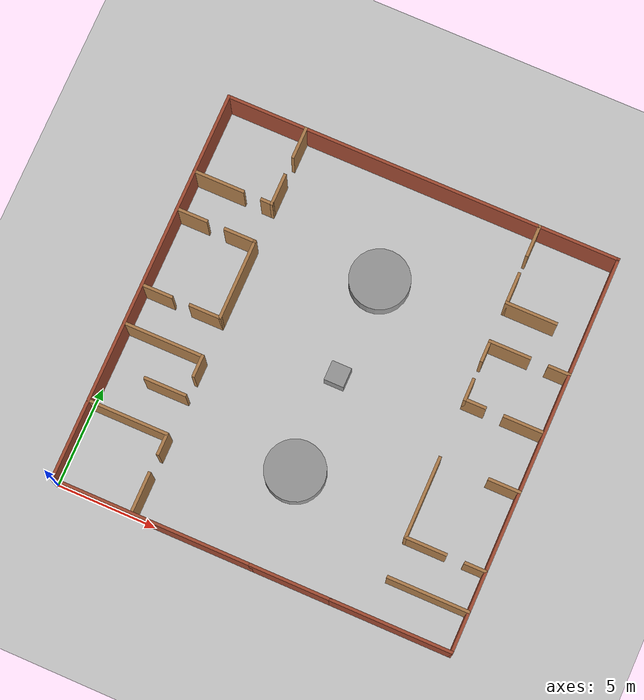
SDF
<sdf version="1.7">
 <world name="default">
  <light name="sun" type="directional">
   <pose>0 0 10 0 -0 0</pose>
   <diffuse>0.8 0.8 0.8 1</diffuse>
   <specular>0.2 0.2 0.2 1</specular>
   <attenuation>
    <range>1000</range>
    <constant>0.9</constant>
    <linear>0.01</linear>
    <quadratic>0.001</quadratic>
   </attenuation>
   <direction>-0.5 0.1 -0.9</direction>
   <spot><inner_angle>0</inner_angle><outer_angle>0</outer_angle><falloff>0</falloff></spot>
  </light>
  <model name="ground_plane">
   <static>1</static>
   <link name="link">
    <collision name="collision">
     <geometry><plane><normal>0 0 1</normal><size>100 100</size></plane></geometry>
     <surface>
      <contact><collide_bitmask>65535</collide_bitmask></contact>
      <friction><ode><mu>100</mu><mu2>50</mu2></ode></friction>
     </surface>
    </collision>
    <visual name="visual">
     <cast_shadows>0</cast_shadows>
     <geometry><plane><normal>0 0 1</normal><size>100 100</size></plane></geometry>
     <material>
      <script><uri>file://media/materials/scripts/gazebo.material</uri><name>Gazebo/Grey</name></script>
     </material>
    </visual>
   </link>
  </model>
  <gravity>0 0 -9.8</gravity>
  <magnetic_field>6e-06 2.3e-05 -4.2e-05</magnetic_field>
  <atmosphere type="adiabatic"/>
  <physics type="ode">
   <max_step_size>0.001</max_step_size>
   <real_time_factor>1</real_time_factor>
   <real_time_update_rate>1000</real_time_update_rate>
  </physics>
  <scene><ambient>0.4 0.4 0.4 1</ambient><background>0.7 0.7 0.7 1</background><shadows>1</shadows></scene>
  <spherical_coordinates>
   <surface_model>EARTH_WGS84</surface_model>
   <latitude_deg>0</latitude_deg>
   <longitude_deg>0</longitude_deg>
   <elevation>0</elevation>
   <heading_deg>0</heading_deg>
  </spherical_coordinates>
  <model name="Delivery_world">
   <pose>10 10 0 0 -0 0</pose>
   <link name="Wall_0">
    <collision name="Wall_0_Collision">
     <geometry><box><size>20.15 0.15 2.5</size></box></geometry>
     <pose>0 0 1.25 0 -0 0</pose>
    </collision>
    <visual name="Wall_0_Visual">
     <pose>0 0 1.25 0 -0 0</pose>
     <geometry><box><size>20.15 0.15 2.5</size></box></geometry>
     <material>
      <script><uri>file://media/materials/scripts/gazebo.material</uri><name>Gazebo/Bricks</name></script>
      <ambient>1 1 1 1</ambient>
     </material>
     <meta><layer>0</layer></meta>
    </visual>
    <pose>-10 0 0 0 -0 1.5708</pose>
   </link>
   <link name="Wall_10">
    <collision name="Wall_10_Collision">
     <geometry><box><size>4.15 0.15 2.5</size></box></geometry>
     <pose>0 0 1.25 0 -0 0</pose>
    </collision>
    <visual name="Wall_10_Visual">
     <pose>0 0 1.25 0 -0 0</pose>
     <geometry><box><size>4.15 0.15 2.5</size></box></geometry>
     <material>
      <script><uri>file://media/materials/scripts/gazebo.material</uri><name>Gazebo/Wood</name></script>
      <ambient>1 1 1 1</ambient>
     </material>
     <meta><layer>0</layer></meta>
    </visual>
    <pose>-8 -6 0 0 -0 0</pose>
   </link>
   <link name="Wall_12">
    <collision name="Wall_12_Collision">
     <geometry><box><size>1.15 0.15 2.5</size></box></geometry>
     <pose>0 0 1.25 0 -0 0</pose>
    </collision>
    <visual name="Wall_12_Visual">
     <pose>0 0 1.25 0 -0 0</pose>
     <geometry><box><size>1.15 0.15 2.5</size></box></geometry>
     <material>
      <script><uri>file://media/materials/scripts/gazebo.material</uri><name>Gazebo/Wood</name></script>
      <ambient>1 1 1 1</ambient>
     </material>
     <meta><layer>0</layer></meta>
    </visual>
    <pose>-6 -6.5 0 0 -0 -1.5708</pose>
   </link>
   <link name="Wall_14">
    <collision name="Wall_14_Collision">
     <geometry><box><size>2.15 0.15 2.5</size></box></geometry>
     <pose>0 0 1.25 0 -0 0</pose>
    </collision>
    <visual name="Wall_14_Visual">
     <pose>0 0 1.25 0 -0 0</pose>
     <geometry><box><size>2.15 0.15 2.5</size></box></geometry>
     <material>
      <script><uri>file://media/materials/scripts/gazebo.material</uri><name>Gazebo/Wood</name></script>
      <ambient>1 1 1 1</ambient>
     </material>
     <meta><layer>0</layer></meta>
    </visual>
    <pose>-6 -9 0 0 -0 -1.5708</pose>
   </link>
   <link name="Wall_16">
    <collision name="Wall_16_Collision">
     <geometry><box><size>2.15 0.15 2.5</size></box></geometry>
     <pose>0 0 1.25 0 -0 0</pose>
    </collision>
    <visual name="Wall_16_Visual">
     <pose>0 0 1.25 0 -0 0</pose>
     <geometry><box><size>2.15 0.15 2.5</size></box></geometry>
     <material>
      <script><uri>file://media/materials/scripts/gazebo.material</uri><name>Gazebo/Wood</name></script>
      <ambient>1 1 1 1</ambient>
     </material>
     <meta><layer>0</layer></meta>
    </visual>
    <pose>-7 -4 0 0 -0 0</pose>
   </link>
   <link name="Wall_2">
    <collision name="Wall_2_Collision">
     <geometry><box><size>20.15 0.15 2.5</size></box></geometry>
     <pose>0 0 1.25 0 -0 0</pose>
    </collision>
    <visual name="Wall_2_Visual">
     <pose>0 0 1.25 0 -0 0</pose>
     <geometry><box><size>20.15 0.15 2.5</size></box></geometry>
     <material>
      <script><uri>file://media/materials/scripts/gazebo.material</uri><name>Gazebo/Bricks</name></script>
      <ambient>1 1 1 1</ambient>
     </material>
     <meta><layer>0</layer></meta>
    </visual>
    <pose>0 10 0 0 -0 0</pose>
   </link>
   <link name="Wall_20">
    <collision name="Wall_20_Collision">
     <geometry><box><size>4.15 0.15 2.5</size></box></geometry>
     <pose>0 0 1.25 0 -0 0</pose>
    </collision>
    <visual name="Wall_20_Visual">
     <pose>0 0 1.25 0 -0 0</pose>
     <geometry><box><size>4.15 0.15 2.5</size></box></geometry>
     <material>
      <script><uri>file://media/materials/scripts/gazebo.material</uri><name>Gazebo/Wood</name></script>
      <ambient>1 1 1 1</ambient>
     </material>
     <meta><layer>0</layer></meta>
    </visual>
    <pose>-8 -2 0 0 -0 0</pose>
   </link>
   <link name="Wall_22">
    <collision name="Wall_22_Collision">
     <geometry><box><size>1.15 0.15 2.5</size></box></geometry>
     <pose>0 0 1.25 0 -0 0</pose>
    </collision>
    <visual name="Wall_22_Visual">
     <pose>0 0 1.25 0 -0 0</pose>
     <geometry><box><size>1.15 0.15 2.5</size></box></geometry>
     <material>
      <script><uri>file://media/materials/scripts/gazebo.material</uri><name>Gazebo/Wood</name></script>
      <ambient>1 1 1 1</ambient>
     </material>
     <meta><layer>0</layer></meta>
    </visual>
    <pose>-6 -2.5 0 0 -0 -1.5708</pose>
   </link>
   <link name="Wall_24">
    <collision name="Wall_24_Collision">
     <geometry><box><size>1.65 0.15 2.5</size></box></geometry>
     <pose>0 0 1.25 0 -0 0</pose>
    </collision>
    <visual name="Wall_24_Visual">
     <pose>0 0 1.25 0 -0 0</pose>
     <geometry><box><size>1.65 0.15 2.5</size></box></geometry>
     <material>
      <script><uri>file://media/materials/scripts/gazebo.material</uri><name>Gazebo/Wood</name></script>
      <ambient>1 1 1 1</ambient>
     </material>
     <meta><layer>0</layer></meta>
    </visual>
    <pose>-6.75 0 0 0 -0 0</pose>
   </link>
   <link name="Wall_26">
    <collision name="Wall_26_Collision">
     <geometry><box><size>1.65 0.15 2.5</size></box></geometry>
     <pose>0 0 1.25 0 -0 0</pose>
    </collision>
    <visual name="Wall_26_Visual">
     <pose>0 0 1.25 0 -0 0</pose>
     <geometry><box><size>1.65 0.15 2.5</size></box></geometry>
     <material>
      <script><uri>file://media/materials/scripts/gazebo.material</uri><name>Gazebo/Wood</name></script>
      <ambient>1 1 1 1</ambient>
     </material>
     <meta><layer>0</layer></meta>
    </visual>
    <pose>-9.25 0 0 0 -0 0</pose>
   </link>
   <link name="Wall_28">
    <collision name="Wall_28_Collision">
     <geometry><box><size>4.15 0.15 2.5</size></box></geometry>
     <pose>0 0 1.25 0 -0 0</pose>
    </collision>
    <visual name="Wall_28_Visual">
     <pose>0 0 1.25 0 -0 0</pose>
     <geometry><box><size>4.15 0.15 2.5</size></box></geometry>
     <material>
      <script><uri>file://media/materials/scripts/gazebo.material</uri><name>Gazebo/Wood</name></script>
      <ambient>1 1 1 1</ambient>
     </material>
     <meta><layer>0</layer></meta>
    </visual>
    <pose>-6 2 0 0 -0 -1.5708</pose>
   </link>
   <link name="Wall_30">
    <collision name="Wall_30_Collision">
     <geometry><box><size>1.65 0.15 2.5</size></box></geometry>
     <pose>0 0 1.25 0 -0 0</pose>
    </collision>
    <visual name="Wall_30_Visual">
     <pose>0 0 1.25 0 -0 0</pose>
     <geometry><box><size>1.65 0.15 2.5</size></box></geometry>
     <material>
      <script><uri>file://media/materials/scripts/gazebo.material</uri><name>Gazebo/Wood</name></script>
      <ambient>1 1 1 1</ambient>
     </material>
     <meta><layer>0</layer></meta>
    </visual>
    <pose>-9.25 4 0 0 -0 0</pose>
   </link>
   <link name="Wall_32">
    <collision name="Wall_32_Collision">
     <geometry><box><size>2.65 0.15 2.5</size></box></geometry>
     <pose>0 0 1.25 0 -0 0</pose>
    </collision>
    <visual name="Wall_32_Visual">
     <pose>0 0 1.25 0 -0 0</pose>
     <geometry><box><size>2.65 0.15 2.5</size></box></geometry>
     <material>
      <script><uri>file://media/materials/scripts/gazebo.material</uri><name>Gazebo/Wood</name></script>
      <ambient>1 1 1 1</ambient>
     </material>
     <meta><layer>0</layer></meta>
    </visual>
    <pose>-8.75 6 0 0 -0 0</pose>
   </link>
   <link name="Wall_34">
    <collision name="Wall_34_Collision">
     <geometry><box><size>1.65 0.15 2.5</size></box></geometry>
     <pose>0 0 1.25 0 -0 0</pose>
    </collision>
    <visual name="Wall_34_Visual">
     <pose>0 0 1.25 0 -0 0</pose>
     <geometry><box><size>1.65 0.15 2.5</size></box></geometry>
     <material>
      <script><uri>file://media/materials/scripts/gazebo.material</uri><name>Gazebo/Wood</name></script>
      <ambient>1 1 1 1</ambient>
     </material>
     <meta><layer>0</layer></meta>
    </visual>
    <pose>-6 6.75 0 0 -0 -1.5708</pose>
   </link>
   <link name="Wall_36">
    <collision name="Wall_36_Collision">
     <geometry><box><size>0.65 0.15 2.5</size></box></geometry>
     <pose>0 0 1.25 0 -0 0</pose>
    </collision>
    <visual name="Wall_36_Visual">
     <pose>0 0 1.25 0 -0 0</pose>
     <geometry><box><size>0.65 0.15 2.5</size></box></geometry>
     <material>
      <script><uri>file://media/materials/scripts/gazebo.material</uri><name>Gazebo/Wood</name></script>
      <ambient>1 1 1 1</ambient>
     </material>
     <meta><layer>0</layer></meta>
    </visual>
    <pose>-6.25 6 0 0 -0 0</pose>
   </link>
   <link name="Wall_38">
    <collision name="Wall_38_Collision">
     <geometry><box><size>1.65 0.15 2.5</size></box></geometry>
     <pose>0 0 1.25 0 -0 0</pose>
    </collision>
    <visual name="Wall_38_Visual">
     <pose>0 0 1.25 0 -0 0</pose>
     <geometry><box><size>1.65 0.15 2.5</size></box></geometry>
     <material>
      <script><uri>file://media/materials/scripts/gazebo.material</uri><name>Gazebo/Wood</name></script>
      <ambient>1 1 1 1</ambient>
     </material>
     <meta><layer>0</layer></meta>
    </visual>
    <pose>-6.75 4 0 0 -0 0</pose>
   </link>
   <link name="Wall_4">
    <collision name="Wall_4_Collision">
     <geometry><box><size>20.15 0.15 2.5</size></box></geometry>
     <pose>0 0 1.25 0 -0 0</pose>
    </collision>
    <visual name="Wall_4_Visual">
     <pose>0 0 1.25 0 -0 0</pose>
     <geometry><box><size>20.15 0.15 2.5</size></box></geometry>
     <material>
      <script><uri>file://media/materials/scripts/gazebo.material</uri><name>Gazebo/Bricks</name></script>
      <ambient>1 1 1 1</ambient>
     </material>
     <meta><layer>0</layer></meta>
    </visual>
    <pose>10 0 0 0 -0 -1.5708</pose>
   </link>
   <link name="Wall_41">
    <collision name="Wall_41_Collision">
     <geometry><box><size>1.65 0.15 2.5</size></box></geometry>
     <pose>0 0 1.25 0 -0 0</pose>
    </collision>
    <visual name="Wall_41_Visual">
     <pose>0 0 1.25 0 -0 0</pose>
     <geometry><box><size>1.65 0.15 2.5</size></box></geometry>
     <material>
      <script><uri>file://media/materials/scripts/gazebo.material</uri><name>Gazebo/Wood</name></script>
      <ambient>1 1 1 1</ambient>
     </material>
     <meta><layer>0</layer></meta>
    </visual>
    <pose>-6 6.75 0 0 -0 -1.5708</pose>
   </link>
   <link name="Wall_43">
    <collision name="Wall_43_Collision">
     <geometry><box><size>1.65 0.15 2.5</size></box></geometry>
     <pose>0 0 1.25 0 -0 0</pose>
    </collision>
    <visual name="Wall_43_Visual">
     <pose>0 0 1.25 0 -0 0</pose>
     <geometry><box><size>1.65 0.15 2.5</size></box></geometry>
     <material>
      <script><uri>file://media/materials/scripts/gazebo.material</uri><name>Gazebo/Wood</name></script>
      <ambient>1 1 1 1</ambient>
     </material>
     <meta><layer>0</layer></meta>
    </visual>
    <pose>6 6.75 0 0 -0 -1.5708</pose>
   </link>
   <link name="Wall_45">
    <collision name="Wall_45_Collision">
     <geometry><box><size>1.65 0.15 2.5</size></box></geometry>
     <pose>0 0 1.25 0 -0 0</pose>
    </collision>
    <visual name="Wall_45_Visual">
     <pose>0 0 1.25 0 -0 0</pose>
     <geometry><box><size>1.65 0.15 2.5</size></box></geometry>
     <material>
      <script><uri>file://media/materials/scripts/gazebo.material</uri><name>Gazebo/Wood</name></script>
      <ambient>1 1 1 1</ambient>
     </material>
     <meta><layer>0</layer></meta>
    </visual>
    <pose>-6 9.25 0 0 -0 -1.5708</pose>
   </link>
   <link name="Wall_47">
    <collision name="Wall_47_Collision">
     <geometry><box><size>2.15 0.15 2.5</size></box></geometry>
     <pose>0 0 1.25 0 -0 0</pose>
    </collision>
    <visual name="Wall_47_Visual">
     <pose>0 0 1.25 0 -0 0</pose>
     <geometry><box><size>2.15 0.15 2.5</size></box></geometry>
     <material>
      <script><uri>file://media/materials/scripts/gazebo.material</uri><name>Gazebo/Wood</name></script>
      <ambient>1 1 1 1</ambient>
     </material>
     <meta><layer>0</layer></meta>
    </visual>
    <pose>7 4 0 0 -0 0</pose>
   </link>
   <link name="Wall_49">
    <collision name="Wall_49_Collision">
     <geometry><box><size>1.65 0.15 2.5</size></box></geometry>
     <pose>0 0 1.25 0 -0 0</pose>
    </collision>
    <visual name="Wall_49_Visual">
     <pose>0 0 1.25 0 -0 0</pose>
     <geometry><box><size>1.65 0.15 2.5</size></box></geometry>
     <material>
      <script><uri>file://media/materials/scripts/gazebo.material</uri><name>Gazebo/Wood</name></script>
      <ambient>1 1 1 1</ambient>
     </material>
     <meta><layer>0</layer></meta>
    </visual>
    <pose>6 9.25 0 0 -0 -1.5708</pose>
   </link>
   <link name="Wall_51">
    <collision name="Wall_51_Collision">
     <geometry><box><size>2.65 0.15 2.5</size></box></geometry>
     <pose>0 0 1.25 0 -0 0</pose>
    </collision>
    <visual name="Wall_51_Visual">
     <pose>0 0 1.25 0 -0 0</pose>
     <geometry><box><size>2.65 0.15 2.5</size></box></geometry>
     <material>
      <script><uri>file://media/materials/scripts/gazebo.material</uri><name>Gazebo/Wood</name></script>
      <ambient>1 1 1 1</ambient>
     </material>
     <meta><layer>0</layer></meta>
    </visual>
    <pose>7.25 6 0 0 -0 0</pose>
   </link>
   <link name="Wall_53">
    <collision name="Wall_53_Collision">
     <geometry><box><size>1.15 0.15 2.5</size></box></geometry>
     <pose>0 0 1.25 0 -0 0</pose>
    </collision>
    <visual name="Wall_53_Visual">
     <pose>0 0 1.25 0 -0 0</pose>
     <geometry><box><size>1.15 0.15 2.5</size></box></geometry>
     <material>
      <script><uri>file://media/materials/scripts/gazebo.material</uri><name>Gazebo/Wood</name></script>
      <ambient>1 1 1 1</ambient>
     </material>
     <meta><layer>0</layer></meta>
    </visual>
    <pose>9.5 4 0 0 -0 0</pose>
   </link>
   <link name="Wall_56">
    <collision name="Wall_56_Collision">
     <geometry><box><size>1.15 0.15 2.5</size></box></geometry>
     <pose>0 0 1.25 0 -0 0</pose>
    </collision>
    <visual name="Wall_56_Visual">
     <pose>0 0 1.25 0 -0 0</pose>
     <geometry><box><size>1.15 0.15 2.5</size></box></geometry>
     <material>
      <script><uri>file://media/materials/scripts/gazebo.material</uri><name>Gazebo/Wood</name></script>
      <ambient>1 1 1 1</ambient>
     </material>
     <meta><layer>0</layer></meta>
    </visual>
    <pose>6 1.5 0 0 -0 -1.5708</pose>
   </link>
   <link name="Wall_58">
    <collision name="Wall_58_Collision">
     <geometry><box><size>1.15 0.15 2.5</size></box></geometry>
     <pose>0 0 1.25 0 -0 0</pose>
    </collision>
    <visual name="Wall_58_Visual">
     <pose>0 0 1.25 0 -0 0</pose>
     <geometry><box><size>1.15 0.15 2.5</size></box></geometry>
     <material>
      <script><uri>file://media/materials/scripts/gazebo.material</uri><name>Gazebo/Wood</name></script>
      <ambient>1 1 1 1</ambient>
     </material>
     <meta><layer>0</layer></meta>
    </visual>
    <pose>6 3.5 0 0 -0 -1.5708</pose>
   </link>
   <link name="Wall_6">
    <collision name="Wall_6_Collision">
     <geometry><box><size>10.15 0.15 2.5</size></box></geometry>
     <pose>0 0 1.25 0 -0 0</pose>
    </collision>
    <visual name="Wall_6_Visual">
     <pose>0 0 1.25 0 -0 0</pose>
     <geometry><box><size>10.15 0.15 2.5</size></box></geometry>
     <material>
      <script><uri>file://media/materials/scripts/gazebo.material</uri><name>Gazebo/Bricks</name></script>
      <ambient>1 1 1 1</ambient>
     </material>
     <meta><layer>0</layer></meta>
    </visual>
    <pose>-5 -10 0 0 -0 0</pose>
   </link>
   <link name="Wall_62">
    <collision name="Wall_62_Collision">
     <geometry><box><size>1.15 0.15 2.5</size></box></geometry>
     <pose>0 0 1.25 0 -0 0</pose>
    </collision>
    <visual name="Wall_62_Visual">
     <pose>0 0 1.25 0 -0 0</pose>
     <geometry><box><size>1.15 0.15 2.5</size></box></geometry>
     <material>
      <script><uri>file://media/materials/scripts/gazebo.material</uri><name>Gazebo/Wood</name></script>
      <ambient>1 1 1 1</ambient>
     </material>
     <meta><layer>0</layer></meta>
    </visual>
    <pose>6.5 1 0 0 -0 0</pose>
   </link>
   <link name="Wall_64">
    <collision name="Wall_64_Collision">
     <geometry><box><size>2.15 0.15 2.5</size></box></geometry>
     <pose>0 0 1.25 0 -0 0</pose>
    </collision>
    <visual name="Wall_64_Visual">
     <pose>0 0 1.25 0 -0 0</pose>
     <geometry><box><size>2.15 0.15 2.5</size></box></geometry>
     <material>
      <script><uri>file://media/materials/scripts/gazebo.material</uri><name>Gazebo/Wood</name></script>
      <ambient>1 1 1 1</ambient>
     </material>
     <meta><layer>0</layer></meta>
    </visual>
    <pose>9 1 0 0 -0 0</pose>
   </link>
   <link name="Wall_67">
    <collision name="Wall_67_Collision">
     <geometry><box><size>1.65 0.15 2.5</size></box></geometry>
     <pose>0 0 1.25 0 -0 0</pose>
    </collision>
    <visual name="Wall_67_Visual">
     <pose>0 0 1.25 0 -0 0</pose>
     <geometry><box><size>1.65 0.15 2.5</size></box></geometry>
     <material>
      <script><uri>file://media/materials/scripts/gazebo.material</uri><name>Gazebo/Wood</name></script>
      <ambient>1 1 1 1</ambient>
     </material>
     <meta><layer>0</layer></meta>
    </visual>
    <pose>9.25 -2 0 0 -0 0</pose>
   </link>
   <link name="Wall_69">
    <collision name="Wall_69_Collision">
     <geometry><box><size>4.15 0.15 2.5</size></box></geometry>
     <pose>0 0 1.25 0 -0 0</pose>
    </collision>
    <visual name="Wall_69_Visual">
     <pose>0 0 1.25 0 -0 0</pose>
     <geometry><box><size>4.15 0.15 2.5</size></box></geometry>
     <material>
      <script><uri>file://media/materials/scripts/gazebo.material</uri><name>Gazebo/Wood</name></script>
      <ambient>1 1 1 1</ambient>
     </material>
     <meta><layer>0</layer></meta>
    </visual>
    <pose>6 -4 0 0 -0 -1.5708</pose>
   </link>
   <link name="Wall_72">
    <collision name="Wall_72_Collision">
     <geometry><box><size>1.15 0.15 2.5</size></box></geometry>
     <pose>0 0 1.25 0 -0 0</pose>
    </collision>
    <visual name="Wall_72_Visual">
     <pose>0 0 1.25 0 -0 0</pose>
     <geometry><box><size>1.15 0.15 2.5</size></box></geometry>
     <material>
      <script><uri>file://media/materials/scripts/gazebo.material</uri><name>Gazebo/Wood</name></script>
      <ambient>1 1 1 1</ambient>
     </material>
     <meta><layer>0</layer></meta>
    </visual>
    <pose>9.5 -6 0 0 -0 0</pose>
   </link>
   <link name="Wall_74">
    <collision name="Wall_74_Collision">
     <geometry><box><size>2.15 0.15 2.5</size></box></geometry>
     <pose>0 0 1.25 0 -0 0</pose>
    </collision>
    <visual name="Wall_74_Visual">
     <pose>0 0 1.25 0 -0 0</pose>
     <geometry><box><size>2.15 0.15 2.5</size></box></geometry>
     <material>
      <script><uri>file://media/materials/scripts/gazebo.material</uri><name>Gazebo/Wood</name></script>
      <ambient>1 1 1 1</ambient>
     </material>
     <meta><layer>0</layer></meta>
    </visual>
    <pose>7 -6 0 0 -0 0</pose>
   </link>
   <link name="Wall_76">
    <collision name="Wall_76_Collision">
     <geometry><box><size>4.15 0.15 2.5</size></box></geometry>
     <pose>0 0 1.25 0 -0 0</pose>
    </collision>
    <visual name="Wall_76_Visual">
     <pose>0 0 1.25 0 -0 0</pose>
     <geometry><box><size>4.15 0.15 2.5</size></box></geometry>
     <material>
      <script><uri>file://media/materials/scripts/gazebo.material</uri><name>Gazebo/Wood</name></script>
      <ambient>1 1 1 1</ambient>
     </material>
     <meta><layer>0</layer></meta>
    </visual>
    <pose>8 -8 0 0 -0 0</pose>
   </link>
   <link name="Wall_8">
    <collision name="Wall_8_Collision">
     <geometry><box><size>6.15 0.15 2.5</size></box></geometry>
     <pose>0 0 1.25 0 -0 0</pose>
    </collision>
    <visual name="Wall_8_Visual">
     <pose>0 0 1.25 0 -0 0</pose>
     <geometry><box><size>6.15 0.15 2.5</size></box></geometry>
     <material>
      <script><uri>file://media/materials/scripts/gazebo.material</uri><name>Gazebo/Bricks</name></script>
      <ambient>1 1 1 1</ambient>
     </material>
     <meta><layer>0</layer></meta>
    </visual>
    <pose>7 -10 0 0 -0 0</pose>
   </link>
   <static>1</static>
  </model>
  <model name="unit_box">
   <pose>10 10 0.499995 -1e-05 -0 0</pose>
   <link name="link">
    <inertial>
     <mass>1</mass>
     <inertia>
      <ixx>0.166667</ixx>
      <ixy>0</ixy>
      <ixz>0</ixz>
      <iyy>0.166667</iyy>
      <iyz>0</iyz>
      <izz>0.166667</izz>
     </inertia>
    </inertial>
    <collision name="collision"><geometry><box><size>1 1 1</size></box></geometry></collision>
    <visual name="visual">
     <geometry><box><size>1 1 1</size></box></geometry>
     <material>
      <script><name>Gazebo/Grey</name><uri>file://media/materials/scripts/gazebo.material</uri></script>
     </material>
    </visual>
   </link>
  </model>
  <model name="unit_cylinder">
   <link name="link">
    <inertial>
     <mass>1</mass>
     <inertia><ixx>0.145833</ixx><ixy>0</ixy><ixz>0</ixz><iyy>0.145833</iyy><iyz>0</iyz><izz>0.125</izz></inertia>
    </inertial>
    <visual name="visual">
     <geometry><cylinder><radius>1.5</radius><length>1</length></cylinder></geometry>
     <material>
      <script><name>Gazebo/Grey</name><uri>file://media/materials/scripts/gazebo.material</uri></script>
      <shader type="pixel"><normal_map>__default__</normal_map></shader>
      <ambient>0.3 0.3 0.3 1</ambient>
      <diffuse>0.7 0.7 0.7 1</diffuse>
      <specular>0.01 0.01 0.01 1</specular>
      <emissive>0 0 0 1</emissive>
     </material>
    </visual>
    <collision name="collision">
     <geometry><cylinder><radius>0.5</radius><length>1</length></cylinder></geometry>
     <surface>
      <friction>
       <ode><mu>1</mu><mu2>1</mu2><fdir1>0 0 0</fdir1><slip1>0</slip1><slip2>0</slip2></ode>
       <torsional>
        <coefficient>1</coefficient>
        <patch_radius>0</patch_radius>
        <surface_radius>0</surface_radius>
        <use_patch_radius>1</use_patch_radius>
        <ode><slip>0</slip></ode>
       </torsional>
      </friction>
      <bounce><restitution_coefficient>0</restitution_coefficient><threshold>1e+06</threshold></bounce>
      <contact>
       <collide_without_contact>0</collide_without_contact>
       <collide_without_contact_bitmask>1</collide_without_contact_bitmask>
       <collide_bitmask>1</collide_bitmask>
       <ode>
        <soft_cfm>0</soft_cfm>
        <soft_erp>0.2</soft_erp>
        <kp>1e+13</kp>
        <kd>1</kd>
        <max_vel>0.01</max_vel>
        <min_depth>0</min_depth>
       </ode>
       <bullet>
        <split_impulse>1</split_impulse>
        <split_impulse_penetration_threshold>-0.01</split_impulse_penetration_threshold>
        <soft_cfm>0</soft_cfm>
        <soft_erp>0.2</soft_erp>
        <kp>1e+13</kp>
        <kd>1</kd>
       </bullet>
      </contact>
     </surface>
    </collision>
   </link>
   <static>0</static>
   <pose>10 5 0.499994 2e-06 2e-06 0</pose>
  </model>
  <model name="unit_cylinder_0">
   <link name="link">
    <inertial>
     <mass>1</mass>
     <inertia><ixx>0.145833</ixx><ixy>0</ixy><ixz>0</ixz><iyy>0.145833</iyy><iyz>0</iyz><izz>0.125</izz></inertia>
    </inertial>
    <visual name="visual">
     <geometry><cylinder><radius>1.5</radius><length>1</length></cylinder></geometry>
     <material>
      <script><name>Gazebo/Grey</name><uri>file://media/materials/scripts/gazebo.material</uri></script>
      <shader type="pixel"><normal_map>__default__</normal_map></shader>
      <ambient>0.3 0.3 0.3 1</ambient>
      <diffuse>0.7 0.7 0.7 1</diffuse>
      <specular>0.01 0.01 0.01 1</specular>
      <emissive>0 0 0 1</emissive>
     </material>
    </visual>
    <collision name="collision">
     <geometry><cylinder><radius>0.5</radius><length>1</length></cylinder></geometry>
     <surface>
      <friction>
       <ode><mu>1</mu><mu2>1</mu2><fdir1>0 0 0</fdir1><slip1>0</slip1><slip2>0</slip2></ode>
       <torsional>
        <coefficient>1</coefficient>
        <patch_radius>0</patch_radius>
        <surface_radius>0</surface_radius>
        <use_patch_radius>1</use_patch_radius>
        <ode><slip>0</slip></ode>
       </torsional>
      </friction>
      <bounce><restitution_coefficient>0</restitution_coefficient><threshold>1e+06</threshold></bounce>
      <contact>
       <collide_without_contact>0</collide_without_contact>
       <collide_without_contact_bitmask>1</collide_without_contact_bitmask>
       <collide_bitmask>1</collide_bitmask>
       <ode>
        <soft_cfm>0</soft_cfm>
        <soft_erp>0.2</soft_erp>
        <kp>1e+13</kp>
        <kd>1</kd>
        <max_vel>0.01</max_vel>
        <min_depth>0</min_depth>
       </ode>
       <bullet>
        <split_impulse>1</split_impulse>
        <split_impulse_penetration_threshold>-0.01</split_impulse_penetration_threshold>
        <soft_cfm>0</soft_cfm>
        <soft_erp>0.2</soft_erp>
        <kp>1e+13</kp>
        <kd>1</kd>
       </bullet>
      </contact>
     </surface>
    </collision>
   </link>
   <static>0</static>
   <pose>10 15 0.499994 2e-06 2e-06 0</pose>
  </model>
  <model name="Delivery">
   <pose>7.0375 0 0 0 -0 0</pose>
   <link name="Wall_0">
    <collision name="Wall_0_Collision">
     <geometry><box><size>4.15 0.15 2.5</size></box></geometry>
     <pose>0 0 1.25 0 -0 0</pose>
    </collision>
    <visual name="Wall_0_Visual">
     <pose>0 0 1.25 0 -0 0</pose>
     <geometry><box><size>4.15 0.15 2.5</size></box></geometry>
     <material>
      <script><uri>file://media/materials/scripts/gazebo.material</uri><name>Gazebo/Bricks</name></script>
      <ambient>1 1 1 1</ambient>
     </material>
     <meta><layer>0</layer></meta>
    </visual>
    <pose>4.9625 0 0 0 -0 0</pose>
   </link>
   <static>1</static>
  </model>
 </world>
</sdf>
